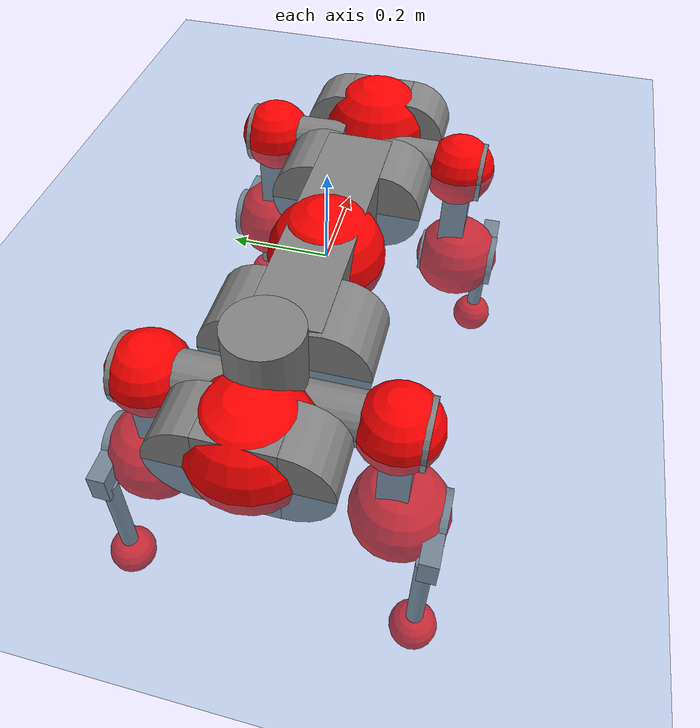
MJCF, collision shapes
<mujoco model="anymal_c">
  <compiler angle="radian" assetdir="assets" balanceinertia="true" inertiafromgeom="false"/>

  <option timestep="0.005" density="1.2" viscosity="2e-05"/>

  <size nkey="1"/>

  <visual>
    <quality shadowsize="8192"/>
    <map shadowclip="0.5"/>
  </visual>

  <default>
    <default class="/">
      <material specular="0" shininess="0.25"/>
      <geom contype="0" conaffinity="0" group="1" solref="-1000 -80"/>
      <site size="0.01 0.005 0.005" group="5"/>
      <general forcelimited="true" forcerange="-80 80" biastype="affine" gainprm="80" biasprm="0 -80 -2"/>
      <default class="anymal_c">
        <joint armature="0.01" damping="0.01" frictionloss="0.1"/>
        <default class="visual">
          <geom type="mesh" group="2"/>
          <default class="visual_zflip"/>
        </default>
        <default class="collision">
          <geom type="cylinder" group="3"/>
          <default class="foot">
            <geom size="0.03 0 0" type="sphere" condim="6" priority="1" friction="0.8 0.02 0.01" solimp="0.015 1 0.03"/>
          </default>
        </default>
      </default>
      <default class="reward_collision_sphere">
        <geom group="5" rgba="1 0 0 1"/>
      </default>
    </default>
  </default>

  <asset>
    <texture type="skybox" colorspace="auto" name="//unnamed_texture_0" builtin="gradient" rgb1="0.95 0.95 0.95" rgb2="0.95 0.95 0.95" width="100" height="600"/>
    <texture type="2d" colorspace="auto" name="texplane" builtin="checker" rgb1="0.345 0.575 0.748" rgb2="0.345 0.575 0.748" markrgb="1 1 1" width="512" height="512"/>
    <texture type="2d" colorspace="linear" name="base" file="base.png"/>
    <texture type="2d" colorspace="linear" name="top_shell" file="top_shell.png"/>
    <texture type="2d" colorspace="linear" name="bottom_shell" file="bottom_shell.png"/>
    <texture type="2d" colorspace="linear" name="remote" file="remote.png"/>
    <texture type="2d" colorspace="linear" name="hatch" file="hatch.png"/>
    <texture type="2d" colorspace="linear" name="handle" file="handle.png"/>
    <texture type="2d" colorspace="linear" name="face" file="face.png"/>
    <texture type="2d" colorspace="linear" name="battery" file="battery.png"/>
    <texture type="2d" colorspace="linear" name="lidar_cage" file="lidar_cage.png"/>
    <texture type="2d" colorspace="linear" name="depth_camera" file="depth_camera.png"/>
    <texture type="2d" colorspace="linear" name="wide_angle_camera" file="wide_angle_camera.png"/>
    <texture type="2d" colorspace="linear" name="lidar" file="lidar.png"/>
    <texture type="2d" colorspace="linear" name="drive" file="drive.png"/>
    <texture type="2d" colorspace="linear" name="hip_l" file="hip_l.png"/>
    <texture type="2d" colorspace="linear" name="shank_l" file="shank_l.png"/>
    <texture type="2d" colorspace="linear" name="foot" file="foot.png"/>
    <texture type="2d" colorspace="linear" name="thigh" file="thigh.png"/>
    <texture type="2d" colorspace="linear" name="shank_r" file="shank_r.png"/>
    <texture type="2d" colorspace="linear" name="hip_r" file="hip_r.png"/>
    <material name="MatPlane" class="/" texture="texplane" texuniform="true" texrepeat="2 2" specular="0.9" shininess="0.5"/>
    <material name="black_plastic" class="/" rgba="0.007 0.007 0.007 1"/>
    <material name="green" class="/" rgba="0.052 0.178 0.033 1"/>
    <material name="red" class="/" rgba="0.178 0.006 0.005 1"/>
    <material name="yellow" class="/" rgba="0.178 0.119 0.006 1"/>
    <material name="lwl" class="/" rgba="0.8 0.8 0.8 1"/>
    <material name="base" class="/" texture="base"/>
    <material name="top_shell" class="/" texture="top_shell"/>
    <material name="bottom_shell" class="/" texture="bottom_shell"/>
    <material name="hip_l" class="/" texture="hip_l"/>
    <material name="thigh" class="/" texture="thigh"/>
    <material name="shank_l" class="/" texture="shank_l"/>
    <material name="foot" class="/" texture="foot"/>
    <material name="hip_r" class="/" texture="hip_r"/>
    <material name="shank" class="/" texture="shank_r"/>
    <material name="hatch" class="/" texture="hatch"/>
    <material name="remote" class="/" texture="remote"/>
    <material name="handle" class="/" texture="handle"/>
    <material name="face" class="/" texture="face"/>
    <material name="depth_camera" class="/" texture="depth_camera"/>
    <material name="wide_angle_camera" class="/" texture="wide_angle_camera"/>
    <material name="battery" class="/" texture="battery"/>
    <material name="lidar_cage" class="/" texture="lidar_cage"/>
    <material name="lidar" class="/" texture="lidar"/>
    <material name="drive" class="/" texture="drive"/>
    <mesh name="base_0" class="/" file="base_0.obj"/>
    <mesh name="base_1" class="/" file="base_1.obj"/>
    <mesh name="base_2" class="/" file="base_2.obj"/>
    <mesh name="base_3" class="/" file="base_3.obj"/>
    <mesh name="base_4" class="/" file="base_4.obj"/>
    <mesh name="base_5" class="/" file="base_5.obj"/>
    <mesh name="top_shell" class="/" file="top_shell.obj"/>
    <mesh name="bottom_shell" class="/" file="bottom_shell.obj"/>
    <mesh name="remote" class="/" file="remote.obj"/>
    <mesh name="handle" class="/" file="handle.obj"/>
    <mesh name="face" class="/" file="face.obj"/>
    <mesh name="wide_angle_camera" class="/" file="wide_angle_camera.obj"/>
    <mesh name="depth_camera" class="/" file="depth_camera.obj"/>
    <mesh name="battery" class="/" file="battery.obj"/>
    <mesh name="lidar_cage" class="/" file="lidar_cage.obj"/>
    <mesh name="lidar" class="/" file="lidar.obj"/>
    <mesh name="drive" class="/" file="drive.obj"/>
    <mesh name="hip_l" class="/" file="hip_l.obj"/>
    <mesh name="thigh" class="/" file="thigh.obj"/>
    <mesh name="shank_l" class="/" file="shank_l.obj"/>
    <mesh name="foot" class="/" file="foot.obj"/>
    <mesh name="hip_r" class="/" file="hip_r.obj"/>
    <mesh name="hatch" class="/" file="hatch.obj"/>
    <mesh name="shank_r" class="/" file="shank_r.obj"/>
  </asset>

  <worldbody>
    <geom name="floor" class="/" size="100 100 0.125" type="plane" group="0" material="MatPlane"/>
    <light name="toplight_shadow" class="/" pos="0 0 5" dir="0.0990148 0.0990148 -0.990148" type="directional" ambient="0.04 0.04 0.04" diffuse="0.55 0.55 0.55" specular="0.12 0.12 0.12"/>
    <light name="toplight_fill" class="/" pos="0 0 5" dir="0.0990148 0.0990148 -0.990148" type="directional" castshadow="false" ambient="0.04 0.04 0.04" diffuse="0.3 0.3 0.3" specular="0.08 0.08 0.08"/>
    <body name="trunk" childclass="anymal_c" pos="0.0039046 0.00204764 0.00152813" quat="0.999999 0.000301595 -0.00113799 -0.000891233">
      <inertial pos="0.00432702 -0.00204867 0.0440439" quat="0.485992 0.499811 0.492544 0.520962" mass="20.1365" diaginertia="0.792786 0.863932 0.12849"/>
      <joint name="//unnamed_joint_0" type="free" armature="0" damping="0" frictionloss="0"/>
      <geom name="//unnamed_geom_1" class="visual" material="green" mesh="base_0"/>
      <geom name="//unnamed_geom_2" class="visual" material="yellow" mesh="base_1"/>
      <geom name="//unnamed_geom_3" class="visual" material="red" mesh="base_2"/>
      <geom name="//unnamed_geom_4" class="visual" material="black_plastic" mesh="base_3"/>
      <geom name="//unnamed_geom_5" class="visual" material="lwl" mesh="base_4"/>
      <geom name="//unnamed_geom_6" class="visual" material="base" mesh="base_5"/>
      <geom name="trunk_1" class="collision" size="0.297298 0.0717615 0.0922648" type="box"/>
      <geom name="trunk_2" class="collision" size="0.0922648 0.0743244" pos="0.233333 0.0752941 0" quat="0.707107 0 0.707107 0"/>
      <geom name="trunk_3" class="collision" size="0.0922648 0.0743244" pos="-0.233333 0.0752941 0" quat="0.707107 0 0.707107 0"/>
      <geom name="trunk_4" class="collision" size="0.0922648 0.0743244" pos="0.233333 -0.0752941 0" quat="0.707107 0 0.707107 0"/>
      <geom name="trunk_5" class="collision" size="0.0922648 0.0743244" pos="-0.233333 -0.0752941 0" quat="0.707107 0 0.707107 0"/>
      <geom name="//unnamed_geom_12" class="visual" material="top_shell" mesh="top_shell"/>
      <geom name="//unnamed_geom_13" class="visual" material="bottom_shell" mesh="bottom_shell"/>
      <geom name="//unnamed_geom_14" class="visual" material="remote" mesh="remote"/>
      <geom name="//unnamed_geom_15" class="visual" material="handle" mesh="handle"/>
      <geom name="//unnamed_geom_16" class="visual" pos="0.444674 0 0" quat="1 0 0 0" material="face" mesh="face"/>
      <geom name="trunk_6" class="collision" size="0.056384 0.0717615 0.0922648" pos="0.503678 0 0" type="box"/>
      <geom name="//unnamed_geom_18" class="collision" size="0.0922648 0.056384" pos="0.503678 0.0752941 0" quat="0.707107 0 0.707107 0"/>
      <geom name="//unnamed_geom_19" class="collision" size="0.0922648 0.056384" pos="0.503678 -0.0752941 0" quat="0.707107 0 0.707107 0"/>
      <geom name="//unnamed_geom_20" class="visual" pos="0.495251 0 -0.0259628" quat="0.965926 0 0.258819 0" material="depth_camera" mesh="depth_camera"/>
      <geom name="//unnamed_geom_21" class="visual" pos="0.550345 0 0.0138782" material="wide_angle_camera" mesh="wide_angle_camera"/>
      <geom name="//unnamed_geom_22" class="visual_zflip" pos="-0.444674 0 0" quat="0 0 0 1" material="face" mesh="face"/>
      <geom name="trunk_7" class="collision" size="0.056384 0.0717615 0.0922648" pos="-0.503678 0 0" quat="0 0 0 1" type="box"/>
      <geom name="//unnamed_geom_24" class="collision" size="0.0922648 0.056384" pos="-0.503678 -0.0752941 0" quat="0 -0.707107 0 0.707107"/>
      <geom name="//unnamed_geom_25" class="collision" size="0.0922648 0.056384" pos="-0.503678 0.0752941 0" quat="0 -0.707107 0 0.707107"/>
      <geom name="//unnamed_geom_26" class="visual" pos="-0.495251 0 -0.0259628" quat="0 -0.258819 0 0.965926" material="depth_camera" mesh="depth_camera"/>
      <geom name="//unnamed_geom_27" class="visual_zflip" pos="-0.550345 0 0.0138782" quat="0 0 0 1" material="wide_angle_camera" mesh="wide_angle_camera"/>
      <geom name="//unnamed_geom_28" class="visual" material="battery" mesh="battery"/>
      <geom name="//unnamed_geom_29" class="visual" pos="0 0.0822738 0.0280388" quat="0.683013 -0.183013 0.183013 0.683013" material="depth_camera" mesh="depth_camera"/>
      <geom name="//unnamed_geom_30" class="visual" pos="0 -0.0822738 0.0280388" quat="0.683013 0.183013 0.183013 -0.683013" material="depth_camera" mesh="depth_camera"/>
      <geom name="//unnamed_geom_31" class="visual" pos="-0.390498 0 0.0681394" quat="1 0 0 0" material="lidar_cage" mesh="lidar_cage"/>
      <geom name="trunk_8" class="collision" size="0.0717615 0.0615099" pos="-0.390498 0 0.123763"/>
      <geom name="//unnamed_geom_33" class="visual" pos="-0.390498 1.11305e-06 0.131829" quat="0.707107 0 0 -0.707107" material="lidar" mesh="lidar"/>
      <geom name="//unnamed_geom_34" class="visual" pos="0.321732 0.111813 2.56273e-09" quat="0.258819 0.965926 0 0" material="drive" mesh="drive"/>
      <geom name="//unnamed_geom_35" class="visual" pos="0.321732 -0.111813 -2.56273e-09" quat="0.258819 -0.965926 0 0" material="drive" mesh="drive"/>
      <geom name="//unnamed_geom_36" class="visual" pos="-0.321732 0.111813 -2.56273e-09" quat="0 0 0.965926 -0.258819" material="drive" mesh="drive"/>
      <geom name="//unnamed_geom_37" class="visual" pos="-0.321732 -0.111813 2.56273e-09" quat="0 0 -0.965926 -0.258819" material="drive" mesh="drive"/>
      <geom name="//unnamed_geom_38" class="visual" pos="0.124444 0 0.0676759" quat="1 0 0 0" material="hatch" mesh="hatch"/>
      <geom name="//unnamed_geom_39" class="reward_collision_sphere" size="0.12302"/>
      <geom name="//unnamed_geom_40" class="reward_collision_sphere" size="0.12302" pos="0.482758 0 0"/>
      <geom name="//unnamed_geom_41" class="reward_collision_sphere" size="0.12302" pos="-0.482758 0 0"/>
      <site name="imu" pos="0.256559 0.0537587 0.0425975" size="0.0102516"/>
      <camera name="track" pos="0 -2.15126 0" quat="0.707107 0.707107 0 0" mode="trackcom"/>
      <camera name="ego_camera" pos="0.482758 0 -0.0370827" quat="-0.5 -0.5 0.5 0.5"/>
      <body name="LF_HIP" pos="0.323278 0.112527 0.00495393" quat="0.262363 0.964967 0.00203081 -0.000938216">
        <inertial pos="0.0624911 -0.0139428 -0.00864771" quat="-0.145473 0.701227 -0.140314 0.683689" mass="2.72499" diaginertia="0.00755359 0.00643348 0.00200771"/>
        <joint name="LF_HAA" pos="0 0 0" axis="0.999952 0.0026827 -0.00940627" range="-0.858051 0.490151" armature="0.00776624" damping="0.0250419" frictionloss="0.0921548"/>
        <geom name="//unnamed_geom_42" class="visual" pos="0 0.000150754 -2.47612e-05" quat="0.258819 -0.965926 0 0" material="hip_l" mesh="hip_l"/>
        <geom name="//unnamed_geom_43" class="visual" pos="0.0642605 -0.0778498 -0.0438478" quat="0.183013 -0.683013 0.683013 0.183013" material="drive" mesh="drive"/>
        <geom name="//unnamed_geom_44" class="collision" size="0.0512582 0.0717615" pos="0.0642605 -0.0128643 -0.0064014" quat="-0.353553 -0.612372 0.612372 -0.353553"/>
        <body name="LF_THIGH" pos="0.0645649 -0.0783497 -0.0414571" quat="0.182928 -0.683469 0.68256 0.183082">
          <inertial pos="0.0319114 0.00709817 -0.21877" quat="0.993252 -0.0083499 -0.0782919 0.0851505" mass="3.30416" diaginertia="0.0449908 0.0451054 0.00299399"/>
          <joint name="LF_HFE" pos="0 0 0" axis="0.999995 0.00328253 7.82338e-05" range="-3.16151 2.9728" armature="0.011314" damping="0.0464632" frictionloss="0.102577"/>
          <geom name="//unnamed_geom_45" class="visual" pos="-5.63676e-05 -8.88222e-08 0" quat="0.707107 0 0 -0.707107" material="thigh" mesh="thigh"/>
          <geom name="//unnamed_geom_46" class="collision" size="0.0666357 0.0410066" pos="0.0429119 0 0" quat="0.5 0.5 -0.5 -0.5"/>
          <geom name="//unnamed_geom_47" class="collision" size="0.0384437 0.0307549 0.14487" pos="0.0321839 0 -0.131008" quat="0.707107 0 0 -0.707107" type="box"/>
          <geom name="//unnamed_geom_48" class="visual" pos="0.107601 0 -0.264214" quat="1 0 0 0" material="drive" mesh="drive"/>
          <geom name="//unnamed_geom_49" class="collision" size="0.0512582 0.0717615" pos="0.0325057 0 -0.264214" quat="0.707107 0 0.707107 0"/>
          <geom name="//unnamed_geom_50" class="reward_collision_sphere" size="0.0820131" pos="0.0268199 0 0"/>
          <body name="LF_SHANK" pos="0.0985392 -0.00774134 -0.267563" quat="1 3.39857e-05 -4.42695e-05 8.06875e-05">
            <inertial pos="0.00515722 -0.0637971 -0.0782555" quat="0.99281 -0.11698 -0.00339801 -0.0251376" mass="0.587108" diaginertia="0.0139897 0.0132559 0.000772048"/>
            <joint name="LF_KFE" pos="0 0 0" axis="0.999994 -0.000682386 0.00339572" stiffness="0.0405324" range="-3.20715 3.26368" armature="0.0106822" damping="0.00681535" frictionloss="0.0916595"/>
            <geom name="//unnamed_geom_51" class="visual" pos="-1.83803e-05 -9.80045e-05 0" quat="0.707107 0 0 -0.707107" material="shank_l" mesh="shank_l"/>
            <geom name="LF_kfe_act" class="collision" size="0.0615099 0.0205033" pos="0.0214559 0 0" quat="0.5 0.5 -0.5 -0.5"/>
            <geom name="//unnamed_geom_53" class="collision" size="0.0589459 0.0345993 0.0194781" pos="0.0214559 -0.0618476 0" quat="0.5 0.5 -0.5 -0.5" type="box"/>
            <geom name="//unnamed_geom_54" class="visual" pos="0.014 -0.0946332 -0.313321" quat="0.382683 0 0 -0.92388" material="foot" mesh="foot"/>
            <geom name="LF_calf" class="collision" size="0.0179404 0.144807" pos="0.014 -0.0946016 -0.15666" quat="0.707107 0 0 -0.707107"/>
            <geom name="LF_foot" class="foot" size="0.0390715" pos="0.014 -0.0946016 -0.292462" quat="0.707107 0 0 -0.707107"/>
            <geom name="//unnamed_geom_57" class="reward_collision_sphere" size="0.102516" pos="-0.0536398 0 0"/>
            <geom name="//unnamed_geom_58" class="reward_collision_sphere" size="0.0512582" pos="0.014 -0.0946016 -0.292462"/>
            <site name="LF_foot" class="foot" pos="0.014 -0.0946016 -0.292462" quat="0.707107 0 0 -0.707107" size="0.0102516"/>
          </body>
        </body>
      </body>
      <body name="RF_HIP" pos="0.320578 -0.113297 -0.00744566" quat="0.25928 -0.965802 -0.000566059 -0.00015476">
        <inertial pos="0.0598928 0.0200061 -0.00665158" quat="0.14578 0.661963 0.104615 0.727742" mass="2.72592" diaginertia="0.00769956 0.00637211 0.00208587"/>
        <joint name="RF_HAA" pos="0 0 0" axis="1 0.000518108 0.00058025" range="-0.574232 0.758127" armature="0.0101706" damping="0.0142298" frictionloss="0.104072"/>
        <geom name="//unnamed_geom_59" class="visual" pos="0 -0.000150753 -2.47611e-05" quat="0.258819 0.965926 0 0" material="hip_r" mesh="hip_r"/>
        <geom name="//unnamed_geom_60" class="visual" pos="0.0642605 0.0778498 -0.0438478" quat="0.183013 0.683013 0.683013 -0.183013" material="drive" mesh="drive"/>
        <geom name="//unnamed_geom_61" class="collision" size="0.0512582 0.0717615" pos="0.0642605 0.0128643 -0.0064014" quat="-0.353553 0.612372 0.612372 0.353553"/>
        <body name="RF_THIGH" pos="0.0631821 0.0744965 -0.0337952" quat="0.18297 0.682996 0.683035 -0.183034">
          <inertial pos="0.0339242 0.000214048 -0.220036" quat="0.996264 0.0220288 -0.0605345 0.0575097" mass="3.02391" diaginertia="0.0398436 0.0390368 0.00259842"/>
          <joint name="RF_HFE" pos="0 0 0" axis="0.999926 0.0116838 0.0034051" stiffness="0.00731205" range="-2.99202 3.04075" armature="0.0125921" damping="0.0126269" frictionloss="0.110025"/>
          <geom name="//unnamed_geom_62" class="visual" pos="-5.63676e-05 -8.88222e-08 0" quat="0.707107 0 0 -0.707107" material="thigh" mesh="thigh"/>
          <geom name="//unnamed_geom_63" class="collision" size="0.0666357 0.0410066" pos="0.0429119 0 0" quat="0.5 0.5 0.5 0.5"/>
          <geom name="//unnamed_geom_64" class="collision" size="0.0384437 0.0307549 0.14487" pos="0.0321839 0 -0.131008" quat="0.707107 0 0 0.707107" type="box"/>
          <geom name="//unnamed_geom_65" class="visual" pos="0.107601 0 -0.264214" quat="1 0 0 0" material="drive" mesh="drive"/>
          <geom name="//unnamed_geom_66" class="collision" size="0.0512582 0.0717615" pos="0.0325057 0 -0.264214" quat="0.707107 0 0.707107 0"/>
          <geom name="//unnamed_geom_67" class="reward_collision_sphere" size="0.0820131" pos="0.0268199 0 0"/>
          <body name="RF_SHANK" pos="0.106286 0.00266208 -0.265672" quat="1 3.34599e-05 -4.2339e-05 -2.97002e-05">
            <inertial pos="0.00779012 0.0676885 -0.0840522" quat="0.992483 0.121051 -0.00338794 0.0176604" mass="0.749159" diaginertia="0.0160198 0.0132212 0.000927625"/>
            <joint name="RF_KFE" pos="0 0 0" axis="0.999993 0.00343574 0.00137295" range="-3.07909 3.17555" armature="0.00794439" damping="0.00814266" frictionloss="0.100927"/>
            <geom name="//unnamed_geom_68" class="visual" pos="-1.83802e-05 9.80043e-05 0" quat="0.707107 0 0 0.707107" material="shank" mesh="shank_r"/>
            <geom name="RF_kfe_act" class="collision" size="0.0615099 0.0205033" pos="0.0214559 0 0" quat="0.5 0.5 0.5 0.5"/>
            <geom name="//unnamed_geom_70" class="collision" size="0.0589459 0.0345993 0.0194781" pos="0.0214559 0.0618476 0" quat="0.5 0.5 0.5 0.5" type="box"/>
            <geom name="//unnamed_geom_71" class="visual" pos="0.014 0.0946332 -0.313321" quat="0.382683 0 0 0.92388" material="foot" mesh="foot"/>
            <geom name="RF_calf" class="collision" size="0.0179404 0.144807" pos="0.014 0.0946016 -0.15666" quat="0.707107 0 0 0.707107"/>
            <geom name="RF_foot" class="foot" size="0.03126" pos="0.014 0.0946016 -0.292462" quat="0.707107 0 0 0.707107"/>
            <geom name="//unnamed_geom_74" class="reward_collision_sphere" size="0.102516" pos="-0.0536398 0 0"/>
            <geom name="//unnamed_geom_75" class="reward_collision_sphere" size="0.0512582" pos="0.014 0.0946016 -0.292462"/>
            <site name="RF_foot" class="foot" pos="0.014 0.0946016 -0.292462" quat="0.707107 0 0 0.707107" size="0.0102516"/>
          </body>
        </body>
      </body>
      <body name="LH_HIP" pos="-0.32295 0.113137 0.00698683" quat="2.82979e-05 7.74355e-05 0.965946 -0.258743">
        <inertial pos="0.0616679 0.0140125 -0.000898413" quat="0.133265 0.680902 0.117902 0.710431" mass="2.6665" diaginertia="0.00749369 0.00718634 0.00225083"/>
        <joint name="LH_HAA" pos="0 0 0" axis="0.999996 0.00279824 -0.000649494" stiffness="0.00395974" range="-0.66184 0.586346" armature="0.00996125" damping="0.0207038" frictionloss="0.0683015"/>
        <geom name="//unnamed_geom_76" class="visual" pos="0 -0.000150753 -2.47611e-05" quat="-0.258819 -0.965926 0 0" material="hip_r" mesh="hip_r"/>
        <geom name="//unnamed_geom_77" class="visual" pos="0.0642605 0.0778498 -0.0438478" quat="0.183013 0.683013 0.683013 -0.183013" material="drive" mesh="drive"/>
        <geom name="//unnamed_geom_78" class="collision" size="0.0512582 0.0717615" pos="0.0642605 0.0128643 -0.0064014" quat="-0.353553 0.612372 0.612372 0.353553"/>
        <body name="LH_THIGH" pos="0.0649662 0.0773537 -0.0360521" quat="0.183228 0.683011 0.682967 -0.182976">
          <inertial pos="0.039434 0.00177322 -0.218866" quat="0.990491 0.00591752 -0.110561 0.0816622" mass="3.21007" diaginertia="0.0466453 0.043545 0.00308936"/>
          <joint name="LH_HFE" pos="0 0 0" axis="0.999493 0.00513526 0.0314248" range="-3.00764 3.10458" armature="0.010319" damping="0.0106805" frictionloss="0.0971126"/>
          <geom name="//unnamed_geom_79" class="visual" pos="-5.63676e-05 -8.88222e-08 0" quat="0.707107 0 0 -0.707107" material="thigh" mesh="thigh"/>
          <geom name="//unnamed_geom_80" class="collision" size="0.0666357 0.0410066" pos="0.0429119 0 0" quat="0.5 0.5 -0.5 -0.5"/>
          <geom name="//unnamed_geom_81" class="collision" size="0.0384437 0.0307549 0.14487" pos="0.0321839 0 -0.131008" quat="0.707107 0 0 -0.707107" type="box"/>
          <geom name="//unnamed_geom_82" class="visual" pos="0.107601 0 -0.264214" quat="1 0 0 0" material="drive" mesh="drive"/>
          <geom name="//unnamed_geom_83" class="collision" size="0.0512582 0.0717615" pos="0.0325057 0 -0.264214" quat="0.707107 0 0.707107 0"/>
          <geom name="//unnamed_geom_84" class="reward_collision_sphere" size="0.0820131" pos="0.0268199 0 0"/>
          <body name="LH_SHANK" pos="0.110237 -0.000710334 -0.259996" quat="0.999999 -0.00100333 -0.0009338 0.000363198">
            <inertial pos="0.00367264 0.0684512 -0.0781078" quat="0.992697 0.120534 -0.004842 0.000792088" mass="0.667515" diaginertia="0.0144942 0.0132247 0.00076348"/>
            <joint name="LH_KFE" pos="0 0 0" axis="0.99997 0.00511327 0.00586394" stiffness="0.0442122" range="-3.13543 3.14112" armature="0.0109449" damping="0.0202772" frictionloss="0.090285"/>
            <geom name="//unnamed_geom_85" class="visual" pos="-1.83802e-05 9.80043e-05 0" quat="-0.707107 0 0 -0.707107" material="shank" mesh="shank_r"/>
            <geom name="LH_kfe_act" class="collision" size="0.0615099 0.0205033" pos="0.0214559 0 0" quat="0.5 0.5 -0.5 -0.5"/>
            <geom name="//unnamed_geom_87" class="collision" size="0.0589459 0.0345993 0.0194781" pos="0.0214559 0.0618476 0" quat="0.5 0.5 -0.5 -0.5" type="box"/>
            <geom name="//unnamed_geom_88" class="visual" pos="0.014 0.0946332 -0.313321" quat="-0.382683 0 0 -0.92388" material="foot" mesh="foot"/>
            <geom name="LH_calf" class="collision" size="0.0179404 0.144807" pos="0.014 0.0946016 -0.15666" quat="0.707107 0 0 -0.707107"/>
            <geom name="LH_foot" class="foot" size="0.0306733" pos="0.014 0.0946016 -0.292462" quat="0.707107 0 0 -0.707107"/>
            <geom name="//unnamed_geom_91" class="reward_collision_sphere" size="0.102516" pos="-0.0536398 0 0"/>
            <geom name="//unnamed_geom_92" class="reward_collision_sphere" size="0.0512582" pos="0.014 0.0946016 -0.292462"/>
            <site name="LH_foot" class="foot" pos="0.014 0.0946016 -0.292462" quat="0.707107 0 0 -0.707107" size="0.0102516"/>
          </body>
        </body>
      </body>
      <body name="RH_HIP" pos="-0.321863 -0.113099 -0.00370287" quat="5.47478e-06 5.10276e-05 -0.965917 -0.258851">
        <inertial pos="0.0619764 -0.022941 -0.00385345" quat="-0.127567 0.708728 -0.135516 0.68049" mass="3.27495" diaginertia="0.00897191 0.00765119 0.00247038"/>
        <joint name="RH_HAA" pos="0 0 0" axis="0.999999 -0.00127428 -0.000945713" range="-0.723296 0.594074" armature="0.0111343" damping="0.0364925" frictionloss="0.102881"/>
        <geom name="//unnamed_geom_93" class="visual" pos="0 0.000150754 -2.47612e-05" quat="-0.258819 0.965926 0 0" material="hip_l" mesh="hip_l"/>
        <geom name="//unnamed_geom_94" class="visual" pos="0.0642605 -0.0778498 -0.0438478" quat="-0.183013 0.683013 -0.683013 -0.183013" material="drive" mesh="drive"/>
        <geom name="//unnamed_geom_95" class="collision" size="0.0512582 0.0717615" pos="0.0642605 -0.0128643 -0.0064014" quat="0.353553 0.612372 -0.612372 0.353553"/>
        <body name="RH_THIGH" pos="0.06604 -0.080836 -0.0461836" quat="-0.183049 0.682968 -0.683034 -0.183064">
          <inertial pos="0.0358983 -0.0039203 -0.227673" quat="0.993097 -0.00212748 -0.0821448 0.0836981" mass="3.76446" diaginertia="0.0453062 0.0447045 0.00285951"/>
          <joint name="RH_HFE" pos="0 0 0" axis="0.999999 -0.00108346 -0.000457768" range="-2.99247 3.00899" armature="0.0108161" damping="0.00804611" frictionloss="0.130517"/>
          <geom name="//unnamed_geom_96" class="visual" pos="-5.63676e-05 -8.88222e-08 0" quat="0.707107 0 0 -0.707107" material="thigh" mesh="thigh"/>
          <geom name="//unnamed_geom_97" class="collision" size="0.0666357 0.0410066" pos="0.0429119 0 0" quat="0.5 0.5 0.5 0.5"/>
          <geom name="//unnamed_geom_98" class="collision" size="0.0384437 0.0307549 0.14487" pos="0.0321839 0 -0.131008" quat="0.707107 0 0 0.707107" type="box"/>
          <geom name="//unnamed_geom_99" class="visual" pos="0.107601 0 -0.264214" quat="1 0 0 0" material="drive" mesh="drive"/>
          <geom name="//unnamed_geom_100" class="collision" size="0.0512582 0.0717615" pos="0.0325057 0 -0.264214" quat="0.707107 0 0.707107 0"/>
          <geom name="//unnamed_geom_101" class="reward_collision_sphere" size="0.0820131" pos="0.0268199 0 0"/>
          <body name="RH_SHANK" pos="0.100017 0.000243056 -0.266615" quat="0.999999 -0.000738417 9.51225e-05 0.000764471">
            <inertial pos="0.0061092 -0.0656254 -0.0745276" quat="0.991832 -0.123573 -0.00277227 -0.0314834" mass="0.697032" diaginertia="0.0147574 0.0134904 0.000818912"/>
            <joint name="RH_KFE" pos="0 0 0" axis="0.999955 0.00353891 0.00876185" stiffness="0.00905326" range="-3.11244 3.09281" armature="0.0107485" damping="0.0454263" frictionloss="0.0969831"/>
            <geom name="//unnamed_geom_102" class="visual" pos="-1.83803e-05 -9.80045e-05 0" quat="0.707107 0 0 -0.707107" material="shank_l" mesh="shank_l"/>
            <geom name="RH_kfe_act" class="collision" size="0.0615099 0.0205033" pos="0.0214559 0 0" quat="0.5 0.5 0.5 0.5"/>
            <geom name="//unnamed_geom_104" class="collision" size="0.0589459 0.0345993 0.0194781" pos="0.0214559 -0.0618476 0" quat="0.5 0.5 0.5 0.5" type="box"/>
            <geom name="//unnamed_geom_105" class="visual" pos="0.014 -0.0946332 -0.313321" quat="0.382683 0 0 -0.92388" material="foot" mesh="foot"/>
            <geom name="RH_calf" class="collision" size="0.0179404 0.144807" pos="0.014 -0.0946016 -0.15666" quat="0.707107 0 0 0.707107"/>
            <geom name="RH_foot" class="foot" size="0.0267296" pos="0.014 -0.0946016 -0.292462" quat="0.707107 0 0 0.707107"/>
            <geom name="//unnamed_geom_108" class="reward_collision_sphere" size="0.102516" pos="-0.0536398 0 0"/>
            <geom name="//unnamed_geom_109" class="reward_collision_sphere" size="0.0512582" pos="0.014 -0.0946016 -0.292462"/>
            <site name="RH_foot" class="foot" pos="0.014 -0.0946016 -0.292462" quat="0.707107 0 0 0.707107" size="0.0102516"/>
          </body>
        </body>
      </body>
    </body>
  </worldbody>

  <contact>
    <pair class="/" geom1="floor" geom2="LF_foot" name="//unnamed_contact_0"/>
    <pair class="/" geom1="floor" geom2="RF_foot" name="//unnamed_contact_1"/>
    <pair class="/" geom1="floor" geom2="LH_foot" name="//unnamed_contact_2"/>
    <pair class="/" geom1="floor" geom2="RH_foot" name="//unnamed_contact_3"/>
  </contact>

  <actuator>
    <general name="LF_HAA" class="/" joint="LF_HAA" forcerange="-89.1842 89.1842" gainprm="81.1161" biasprm="0 -81.1161 -1.72591"/>
    <general name="LF_HFE" class="/" joint="LF_HFE" forcerange="-64.3054 64.3054" gainprm="81.1161" biasprm="0 -81.1161 -1.72591"/>
    <general name="LF_KFE" class="/" joint="LF_KFE" forcerange="-102.725 102.725" gainprm="81.1161" biasprm="0 -81.1161 -1.72591"/>
    <general name="RF_HAA" class="/" joint="RF_HAA" forcerange="-90.6139 90.6139" gainprm="81.1161" biasprm="0 -81.1161 -1.72591"/>
    <general name="RF_HFE" class="/" joint="RF_HFE" forcerange="-74.3065 74.3065" gainprm="81.1161" biasprm="0 -81.1161 -1.72591"/>
    <general name="RF_KFE" class="/" joint="RF_KFE" forcerange="-53.2901 53.2901" gainprm="81.1161" biasprm="0 -81.1161 -1.72591"/>
    <general name="LH_HAA" class="/" joint="LH_HAA" forcerange="-60.5417 60.5417" gainprm="81.1161" biasprm="0 -81.1161 -1.72591"/>
    <general name="LH_HFE" class="/" joint="LH_HFE" forcerange="-78.3344 78.3344" gainprm="81.1161" biasprm="0 -81.1161 -1.72591"/>
    <general name="LH_KFE" class="/" joint="LH_KFE" forcerange="-93.856 93.856" gainprm="81.1161" biasprm="0 -81.1161 -1.72591"/>
    <general name="RH_HAA" class="/" joint="RH_HAA" forcerange="-84.3361 84.3361" gainprm="81.1161" biasprm="0 -81.1161 -1.72591"/>
    <general name="RH_HFE" class="/" joint="RH_HFE" forcerange="-108.509 108.509" gainprm="81.1161" biasprm="0 -81.1161 -1.72591"/>
    <general name="RH_KFE" class="/" joint="RH_KFE" forcerange="-97.805 97.805" gainprm="81.1161" biasprm="0 -81.1161 -1.72591"/>
  </actuator>

  <sensor>
    <gyro site="imu" name="imu_angular_velocity"/>
    <velocimeter site="imu" name="imu_linear_velocity"/>
    <framelinvel objtype="site" objname="LF_foot" name="LF_foot_global_linear_velocity"/>
    <framelinvel objtype="site" objname="RF_foot" name="RF_foot_global_linear_velocity"/>
    <framelinvel objtype="site" objname="LH_foot" name="LH_foot_global_linear_velocity"/>
    <framelinvel objtype="site" objname="RH_foot" name="RH_foot_global_linear_velocity"/>
  </sensor>

  <keyframe>
    <key name="home" qpos="0 0 0.55 1 0 0 0 0 0.4 -0.8 0 -0.4 0.8 0 -0.4 0.8 0 0.4 -0.8"/>
  </keyframe>
</mujoco>
